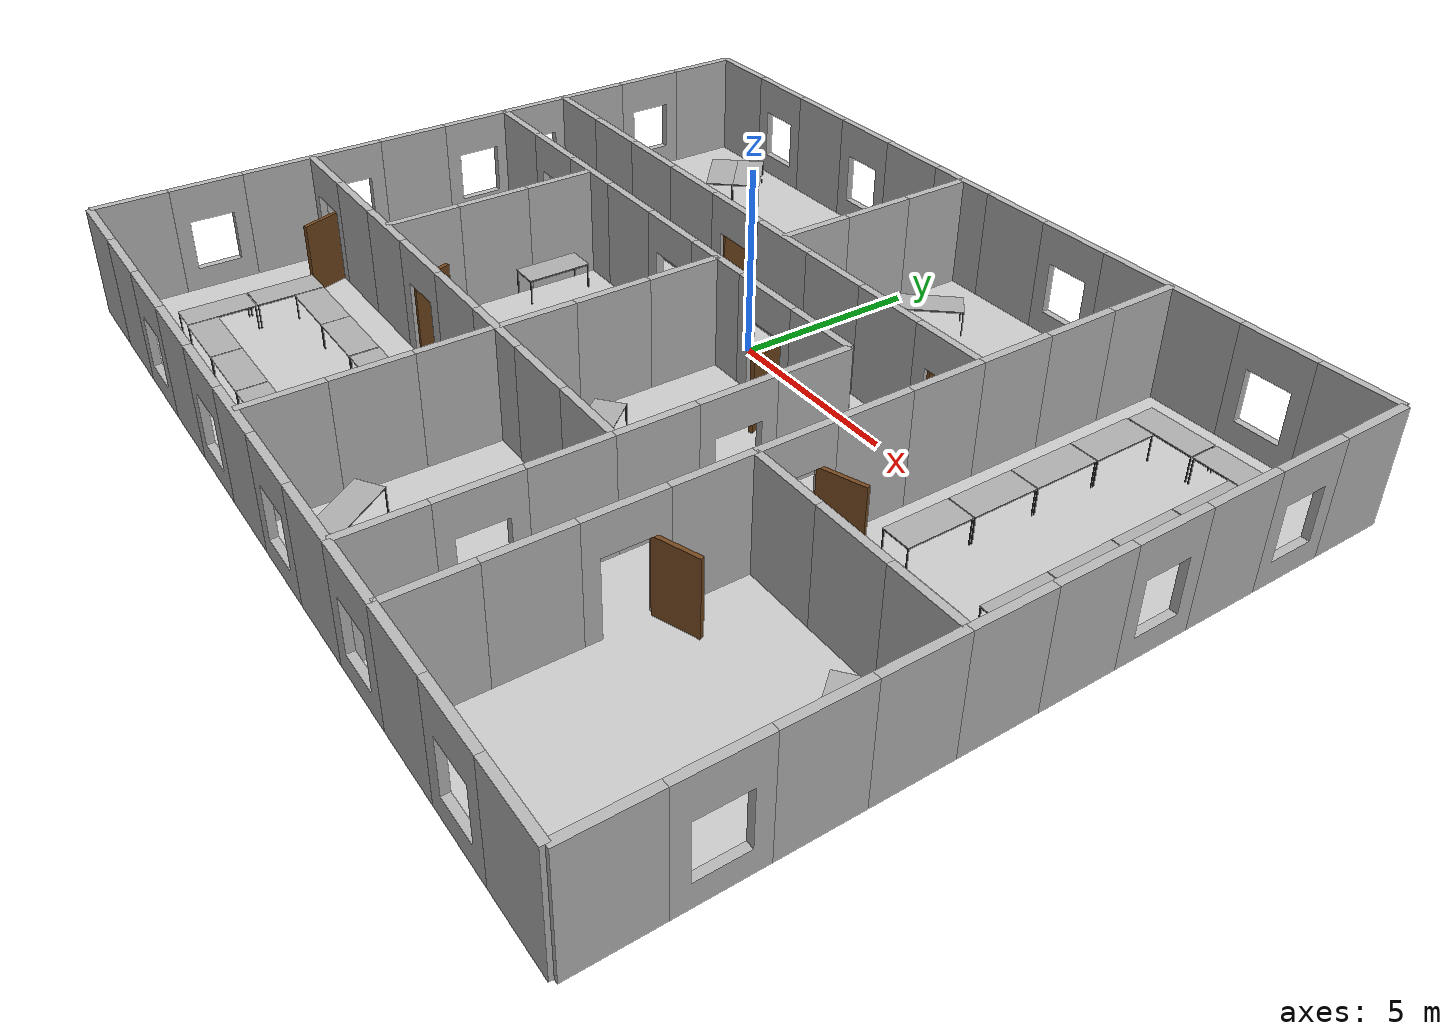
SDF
<sdf version="1.5">
 <world name="office_sim">
  <scene><shadows>false</shadows><sky><clouds>false</clouds><time>12.0</time></sky></scene>
  <include><uri>model://sun</uri></include>
  <model name="office_floor">
   <pose>1 -3 0 0 0 0</pose>
   <static>1</static>
   <link name="link">
    <collision name="collision">
     <geometry><plane><normal>0 0 1</normal><size>100 100</size></plane></geometry>
     <surface><friction><ode><mu>100</mu><mu2>50</mu2></ode></friction></surface>
    </collision>
    <visual name="visual">
     <cast_shadows>0</cast_shadows>
     <geometry><plane><normal>0 0 1</normal><size>24 20</size></plane></geometry>
     <material>
      <script><uri>file://Media/materials/scripts/iai-office.material</uri><name>IAI/OfficeCarpet</name></script>
     </material>
    </visual>
   </link>
  </model>
  <light name="fill_light_2" type="directional">
   <pose>10 20 10 -1 -1 0</pose>
   <diffuse>0.2 0.18 0.18 1</diffuse>
   <specular>0.0980392 0.0980392 0.0980392 1</specular>
   <direction>0.1 0.1 -0.9</direction>
   <attenuation>
    <range>20</range>
    <constant>0.5</constant>
    <linear>0.01</linear>
    <quadratic>0.001</quadratic>
   </attenuation>
  </light>
  <light name="fill_light_0" type="directional">
   <pose>-10 -20 10 1 1 0</pose>
   <diffuse>0.25 0.2 0.2 1</diffuse>
   <specular>0.0980392 0.0980392 0.0980392 1</specular>
   <direction>0.1 0.1 -0.9</direction>
   <attenuation>
    <range>20</range>
    <constant>0.5</constant>
    <linear>0.01</linear>
    <quadratic>0.001</quadratic>
   </attenuation>
  </light>
  <include>
   <name>DoorOpen.011</name>
   <uri>model://DoorOpen</uri>
   <pose>-2.0 1.0 0.0 0.0 -0.0 -2.384185791015625e-07</pose>
  </include>
  <include>
   <name>DoorOpen.010</name>
   <uri>model://DoorOpen</uri>
   <pose>6.0 1.0 0.0 0.0 -0.0 -2.384185791015625e-07</pose>
  </include>
  <include>
   <name>DoorOpen.009</name>
   <uri>model://DoorOpen</uri>
   <pose>-2.0 -1.0 0.0 0.0 -0.0 3.141592502593994</pose>
  </include>
  <include>
   <name>DoorOpen.008</name>
   <uri>model://DoorOpen</uri>
   <pose>-10.0 -7.0 0.0 0.0 -0.0 3.141592502593994</pose>
  </include>
  <include>
   <name>DoorOpen.007</name>
   <uri>model://DoorOpen</uri>
   <pose>-8.0 -1.0 0.0 0.0 -0.0 3.141592502593994</pose>
  </include>
  <include>
   <name>DoorOpen.006</name>
   <uri>model://DoorOpen</uri>
   <pose>2.0 -1.0 0.0 0.0 -0.0 3.141592502593994</pose>
  </include>
  <include>
   <name>DoorOpen.005</name>
   <uri>model://DoorOpen</uri>
   <pose>5.0 -10.0 0.0 0.0 -0.0 1.570796251296997</pose>
  </include>
  <include>
   <name>DoorOpen.004</name>
   <uri>model://DoorOpen</uri>
   <pose>5.0 -4.0 0.0 0.0 -0.0 1.570796251296997</pose>
  </include>
  <include>
   <name>DoorOpen.003</name>
   <uri>model://DoorOpen</uri>
   <pose>7.0 -4.0 0.0 0.0 -0.0 -1.5707963705062866</pose>
  </include>
  <include>
   <name>DoorOpen.002</name>
   <uri>model://DoorOpen</uri>
   <pose>7.0 -8.0 0.0 0.0 -0.0 -1.5707963705062866</pose>
  </include>
  <include><name>DoorOpen.001</name><uri>model://DoorOpen</uri><pose>-4.0 -7.0 0.0 0.0 -0.0 0.0</pose></include>
  <include>
   <name>BigTable.035</name>
   <uri>model://BigTable</uri>
   <pose>9.970643997192383 -3.337587833404541 0.0 0.0 -0.0 -3.141592502593994</pose>
  </include>
  <include>
   <name>BigTable.034</name>
   <uri>model://BigTable</uri>
   <pose>-1.7653074264526367 -10.015997886657715 0.0 0.0 0.0 -1.570796251296997</pose>
  </include>
  <include>
   <name>BigTable.033</name>
   <uri>model://BigTable</uri>
   <pose>1.3909807205200195 -11.392568588256836 0.0 0.0 -0.0 -0.9696148037910461</pose>
  </include>
  <include>
   <name>BigTable.032</name>
   <uri>model://BigTable</uri>
   <pose>11.59203815460205 -6.392568588256836 0.0 0.0 0.0 2.259244441986084</pose>
  </include>
  <include>
   <name>BigTable.031</name>
   <uri>model://BigTable</uri>
   <pose>1.5920383930206299 4.607431411743164 0.0 0.0 -0.0 -2.278611898422241</pose>
  </include>
  <include>
   <name>BigTable.030</name>
   <uri>model://BigTable</uri>
   <pose>-5.888200283050537 3.0161097049713135 0.0 0.0 -0.0 0.28127923607826233</pose>
  </include>
  <include>
   <name>BigTable.029</name>
   <uri>model://BigTable</uri>
   <pose>-5.666131496429443 2.247548818588257 0.0 0.0 -0.0 0.28127923607826233</pose>
  </include>
  <include>
   <name>BigTable.028</name>
   <uri>model://BigTable</uri>
   <pose>-8.040440559387207 4.811714172363281 0.0 0.0 0.0 -0.7120052576065063</pose>
  </include>
  <include>
   <name>BigTable.027</name>
   <uri>model://BigTable</uri>
   <pose>-7.517758369445801 5.417357444763184 0.0 0.0 0.0 -0.7120052576065063</pose>
  </include>
  <include>
   <name>BigTable.026</name>
   <uri>model://BigTable</uri>
   <pose>-1.4606881141662598 3.8930177688598633 0.0 0.0 -0.0 -2.475163459777832</pose>
  </include>
  <include>
   <name>BigTable.025</name>
   <uri>model://BigTable</uri>
   <pose>-1.9552350044250488 4.521844863891602 0.0 0.0 -0.0 -2.475163459777832</pose>
  </include>
  <include>
   <name>BigTable.024</name>
   <uri>model://BigTable</uri>
   <pose>-9.847131729125977 2.143615245819092 0.0 0.0 -0.0 -0.5935592651367188</pose>
  </include>
  <include>
   <name>BigTable.023</name>
   <uri>model://BigTable</uri>
   <pose>-6.975014686584473 -5.92275333404541 0.0 0.0 -0.0 0.9772372841835022</pose>
  </include>
  <include>
   <name>BigTable.022</name>
   <uri>model://BigTable</uri>
   <pose>-5.118752956390381 -8.626441955566406 0.0 0.0 -0.0 0.0</pose>
  </include>
  <include>
   <name>BigTable.021</name>
   <uri>model://BigTable</uri>
   <pose>-3.282266616821289 -8.626441955566406 0.0 0.0 -0.0 0.0</pose>
  </include>
  <include>
   <name>BigTable.020</name>
   <uri>model://BigTable</uri>
   <pose>-6.928031921386719 -8.626441955566406 0.0 0.0 -0.0 0.0</pose>
  </include>
  <include>
   <name>BigTable.019</name>
   <uri>model://BigTable</uri>
   <pose>-5.103433609008789 -11.471855163574219 0.0 0.0 -0.0 0.0</pose>
  </include>
  <include>
   <name>BigTable.018</name>
   <uri>model://BigTable</uri>
   <pose>-6.928031921386719 -11.471855163574219 0.0 0.0 -0.0 0.0</pose>
  </include>
  <include>
   <name>BigTable.017</name>
   <uri>model://BigTable</uri>
   <pose>-3.282266616821289 -11.471855163574219 0.0 0.0 -0.0 0.0</pose>
  </include>
  <include>
   <name>BigTable.016</name>
   <uri>model://BigTable</uri>
   <pose>-8.26133918762207 -10.950126647949219 0.0 0.0 0.0 -1.570796251296997</pose>
  </include>
  <include>
   <name>BigTable.015</name>
   <uri>model://BigTable</uri>
   <pose>-8.26133918762207 -9.114413261413574 0.0 0.0 0.0 -1.570796251296997</pose>
  </include>
  <include>
   <name>BigTable.014</name>
   <uri>model://BigTable</uri>
   <pose>10.849480628967285 5.211101531982422 0.0 0.0 -0.0 -3.141592502593994</pose>
  </include>
  <include>
   <name>BigTable.013</name>
   <uri>model://BigTable</uri>
   <pose>9.01376724243164 5.211101531982422 0.0 0.0 -0.0 -3.141592502593994</pose>
  </include>
  <include>
   <name>BigTable.012</name>
   <uri>model://BigTable</uri>
   <pose>8.49203872680664 -1.5925686359405518 0.0 0.0 -0.0 -1.570796251296997</pose>
  </include>
  <include>
   <name>BigTable.011</name>
   <uri>model://BigTable</uri>
   <pose>8.49203872680664 0.2320290505886078 0.0 0.0 -0.0 -1.570796251296997</pose>
  </include>
  <include>
   <name>BigTable.010</name>
   <uri>model://BigTable</uri>
   <pose>8.49203872680664 3.877794027328491 0.0 0.0 -0.0 -1.570796251296997</pose>
  </include>
  <include>
   <name>BigTable.009</name>
   <uri>model://BigTable</uri>
   <pose>8.49203872680664 2.053196430206299 0.0 0.0 -0.0 -1.570796251296997</pose>
  </include>
  <include>
   <name>BigTable.008</name>
   <uri>model://BigTable</uri>
   <pose>11.337451934814453 2.053196430206299 0.0 0.0 -0.0 -1.570796251296997</pose>
  </include>
  <include>
   <name>BigTable.007</name>
   <uri>model://BigTable</uri>
   <pose>11.337451934814453 3.877794027328491 0.0 0.0 -0.0 -1.570796251296997</pose>
  </include>
  <include>
   <name>BigTable.006</name>
   <uri>model://BigTable</uri>
   <pose>11.337451934814453 0.2320290505886078 0.0 0.0 -0.0 -1.570796251296997</pose>
  </include>
  <include>
   <name>BigTable.005</name>
   <uri>model://BigTable</uri>
   <pose>11.337451934814453 -1.5925686359405518 0.0 0.0 -0.0 -1.570796251296997</pose>
  </include>
  <include>
   <name>BigTable.004</name>
   <uri>model://BigTable</uri>
   <pose>-5.507961273193359 -2.5925686359405518 0.0 0.0 -0.0 -1.570796251296997</pose>
  </include>
  <include>
   <name>BigTable.003</name>
   <uri>model://BigTable</uri>
   <pose>-2.0734405517578125 -4.955126762390137 0.0 0.0 -0.0 -1.1522915363311768</pose>
  </include>
  <include>
   <name>BigTable.002</name>
   <uri>model://BigTable</uri>
   <pose>-1.3424824476242065 -4.630010604858398 0.0 0.0 -0.0 -1.1522915363311768</pose>
  </include>
  <include>
   <name>BigTable.001</name>
   <uri>model://BigTable</uri>
   <pose>1.5920383930206299 -5.392568588256836 0.0 0.0 -0.0 -0.8726645708084106</pose>
  </include>
  <include>
   <name>WindowTile.019</name>
   <uri>model://WindowTile</uri>
   <pose>-6.0 -13.0 0.0 0.0 -0.0 0.0</pose>
  </include>
  <include>
   <name>WindowTile.018</name>
   <uri>model://WindowTile</uri>
   <pose>-2.0 -13.0 0.0 0.0 -0.0 0.0</pose>
  </include>
  <include>
   <name>WindowTile.017</name>
   <uri>model://WindowTile</uri>
   <pose>2.0 -13.0 0.0 0.0 -0.0 0.0</pose>
  </include>
  <include>
   <name>WindowTile.016</name>
   <uri>model://WindowTile</uri>
   <pose>6.0 -13.0 0.0 0.0 -0.0 0.0</pose>
  </include>
  <include>
   <name>WindowTile.015</name>
   <uri>model://WindowTile</uri>
   <pose>-11.0 -10.0 0.0 0.0 -0.0 -1.570796251296997</pose>
  </include>
  <include>
   <name>WindowTile.014</name>
   <uri>model://WindowTile</uri>
   <pose>-11.0 -6.0 0.0 0.0 -0.0 -1.570796251296997</pose>
  </include>
  <include>
   <name>WindowTile.013</name>
   <uri>model://WindowTile</uri>
   <pose>-11.0 -2.0 0.0 0.0 -0.0 -1.570796251296997</pose>
  </include>
  <include>
   <name>WindowTile.012</name>
   <uri>model://WindowTile</uri>
   <pose>-11.0 0.0 0.0 0.0 -0.0 -1.570796251296997</pose>
  </include>
  <include>
   <name>WindowTile.003</name>
   <uri>model://WindowTile</uri>
   <pose>-11.0 4.0 0.0 0.0 -0.0 -1.570796251296997</pose>
  </include>
  <include>
   <name>WallTile.084</name>
   <uri>model://WallTile</uri>
   <pose>2.0 1.0 0.0 0.0 -0.0 3.141592502593994</pose>
  </include>
  <include>
   <name>DoorTile.011</name>
   <uri>model://DoorTile</uri>
   <pose>5.0 -4.0 0.0 0.0 -0.0 -1.570796251296997</pose>
  </include>
  <include>
   <name>DoorTile.010</name>
   <uri>model://DoorTile</uri>
   <pose>5.0 -10.0 0.0 0.0 -0.0 -1.570796251296997</pose>
  </include>
  <include><name>WallTile.082</name><uri>model://WallTile</uri><pose>4.0 -7.0 0.0 0.0 -0.0 0.0</pose></include>
  <include>
   <name>WallTile.081</name>
   <uri>model://WallTile</uri>
   <pose>2.0 -7.0 0.0 0.0 -0.0 3.141592502593994</pose>
  </include>
  <include>
   <name>WallTile.080</name>
   <uri>model://WallTile</uri>
   <pose>5.0 -6.0 0.0 0.0 -0.0 1.570796251296997</pose>
  </include>
  <include>
   <name>WallTile.078</name>
   <uri>model://WallTile</uri>
   <pose>5.0 -2.0 0.0 0.0 -0.0 1.570796251296997</pose>
  </include>
  <include>
   <name>WallTile.077</name>
   <uri>model://WallTile</uri>
   <pose>5.0 -8.0 0.0 0.0 -0.0 1.570796251296997</pose>
  </include>
  <include>
   <name>WallTile.075</name>
   <uri>model://WallTile</uri>
   <pose>5.0 -12.0 0.0 0.0 -0.0 1.570796251296997</pose>
  </include>
  <include>
   <name>WallTile.074</name>
   <uri>model://WallTile</uri>
   <pose>0.0 -12.0 0.0 0.0 -0.0 1.570796251296997</pose>
  </include>
  <include>
   <name>WallTile.073</name>
   <uri>model://WallTile</uri>
   <pose>0.0 -10.0 0.0 0.0 -0.0 1.570796251296997</pose>
  </include>
  <include>
   <name>WallTile.072</name>
   <uri>model://WallTile</uri>
   <pose>0.0 -8.0 0.0 0.0 -0.0 1.570796251296997</pose>
  </include>
  <include>
   <name>WallTile.071</name>
   <uri>model://WallTile</uri>
   <pose>-2.0 -7.0 0.0 0.0 -0.0 3.141592502593994</pose>
  </include>
  <include>
   <name>WallTile.070</name>
   <uri>model://WallTile</uri>
   <pose>-6.0 -7.0 0.0 0.0 -0.0 3.141592502593994</pose>
  </include>
  <include>
   <name>WallTile.069</name>
   <uri>model://WallTile</uri>
   <pose>-8.0 -7.0 0.0 0.0 -0.0 3.141592502593994</pose>
  </include>
  <include><name>WallTile.068</name><uri>model://WallTile</uri><pose>0.0 -7.0 0.0 0.0 -0.0 0.0</pose></include>
  <include><name>DoorTile.009</name><uri>model://DoorTile</uri><pose>-4.0 -7.0 0.0 0.0 -0.0 0.0</pose></include>
  <include>
   <name>DoorTile.008</name>
   <uri>model://DoorTile</uri>
   <pose>-10.0 -7.0 0.0 0.0 -0.0 0.0</pose>
  </include>
  <include>
   <name>WallTile.067</name>
   <uri>model://WallTile</uri>
   <pose>0.0 -2.0 0.0 0.0 -0.0 1.570796251296997</pose>
  </include>
  <include>
   <name>WallTile.066</name>
   <uri>model://WallTile</uri>
   <pose>0.0 -4.0 0.0 0.0 -0.0 1.570796251296997</pose>
  </include>
  <include>
   <name>WallTile.065</name>
   <uri>model://WallTile</uri>
   <pose>0.0 -6.0 0.0 0.0 -0.0 1.570796251296997</pose>
  </include>
  <include>
   <name>WallTile.064</name>
   <uri>model://WallTile</uri>
   <pose>-6.0 -6.0 0.0 0.0 -0.0 1.570796251296997</pose>
  </include>
  <include>
   <name>WallTile.063</name>
   <uri>model://WallTile</uri>
   <pose>-6.0 -4.0 0.0 0.0 -0.0 1.570796251296997</pose>
  </include>
  <include>
   <name>WallTile.021</name>
   <uri>model://WallTile</uri>
   <pose>-6.0 -2.0 0.0 0.0 -0.0 1.570796251296997</pose>
  </include>
  <include><name>DoorTile.007</name><uri>model://DoorTile</uri><pose>-8.0 -1.0 0.0 0.0 -0.0 0.0</pose></include>
  <include><name>DoorTile.006</name><uri>model://DoorTile</uri><pose>-2.0 -1.0 0.0 0.0 -0.0 0.0</pose></include>
  <include><name>WallTile.062</name><uri>model://WallTile</uri><pose>0.0 -1.0 0.0 0.0 -0.0 0.0</pose></include>
  <include>
   <name>WallTile.061</name>
   <uri>model://WallTile</uri>
   <pose>4.0 -1.0 0.0 0.0 -0.0 3.141592502593994</pose>
  </include>
  <include><name>DoorTile.005</name><uri>model://DoorTile</uri><pose>2.0 -1.0 0.0 0.0 -0.0 0.0</pose></include>
  <include>
   <name>WallTile.036</name>
   <uri>model://WallTile</uri>
   <pose>-10.0 -1.0 0.0 0.0 -0.0 3.141592502593994</pose>
  </include>
  <include>
   <name>WallTile.031</name>
   <uri>model://WallTile</uri>
   <pose>-6.0 -1.0 0.0 0.0 -0.0 3.141592502593994</pose>
  </include>
  <include>
   <name>WallTile.028</name>
   <uri>model://WallTile</uri>
   <pose>-4.0 -1.0 0.0 0.0 -0.0 3.141592502593994</pose>
  </include>
  <include>
   <name>DoorTile.004</name>
   <uri>model://DoorTile</uri>
   <pose>7.0 -8.0 0.0 0.0 -0.0 -1.570796251296997</pose>
  </include>
  <include>
   <name>WindowTile.010</name>
   <uri>model://WindowTile</uri>
   <pose>10.0 -13.0 0.0 0.0 -0.0 0.0</pose>
  </include>
  <include>
   <name>WindowTile.009</name>
   <uri>model://WindowTile</uri>
   <pose>13.0 -10.0 0.0 0.0 -0.0 -1.570796251296997</pose>
  </include>
  <include>
   <name>WallTile.060</name>
   <uri>model://WallTile</uri>
   <pose>-8.0 1.0 0.0 0.0 -0.0 3.141592502593994</pose>
  </include>
  <include>
   <name>WallTile.059</name>
   <uri>model://WallTile</uri>
   <pose>-4.0 1.0 0.0 0.0 -0.0 3.141592502593994</pose>
  </include>
  <include>
   <name>WallTile.058</name>
   <uri>model://WallTile</uri>
   <pose>-6.0 1.0 0.0 0.0 -0.0 3.141592502593994</pose>
  </include>
  <include>
   <name>WallTile.057</name>
   <uri>model://WallTile</uri>
   <pose>-10.0 1.0 0.0 0.0 -0.0 3.141592502593994</pose>
  </include>
  <include>
   <name>WallTile.056</name>
   <uri>model://WallTile</uri>
   <pose>-10.0 7.0 0.0 0.0 -0.0 3.141592502593994</pose>
  </include>
  <include>
   <name>WindowTile.008</name>
   <uri>model://WindowTile</uri>
   <pose>-8.0 7.0 0.0 0.0 -0.0 0.0</pose>
  </include>
  <include>
   <name>WallTile.055</name>
   <uri>model://WallTile</uri>
   <pose>-11.0 6.0 0.0 0.0 -0.0 1.570796251296997</pose>
  </include>
  <include>
   <name>WallTile.054</name>
   <uri>model://WallTile</uri>
   <pose>-11.0 2.0 0.0 0.0 -0.0 1.570796251296997</pose>
  </include>
  <include>
   <name>WallTile.051</name>
   <uri>model://WallTile</uri>
   <pose>-11.0 -4.0 0.0 0.0 -0.0 1.570796251296997</pose>
  </include>
  <include>
   <name>WallTile.047</name>
   <uri>model://WallTile</uri>
   <pose>-11.0 -8.0 0.0 0.0 -0.0 -1.5707963705062866</pose>
  </include>
  <include>
   <name>WallTile.046</name>
   <uri>model://WallTile</uri>
   <pose>-11.0 -12.0 0.0 0.0 -0.0 -1.5707963705062866</pose>
  </include>
  <include>
   <name>WallTile.044</name>
   <uri>model://WallTile</uri>
   <pose>0.0 -13.0 0.0 0.0 -0.0 3.141592502593994</pose>
  </include>
  <include>
   <name>WallTile.043</name>
   <uri>model://WallTile</uri>
   <pose>-4.0 -13.0 0.0 0.0 -0.0 3.141592502593994</pose>
  </include>
  <include>
   <name>WallTile.042</name>
   <uri>model://WallTile</uri>
   <pose>-10.0 -13.0 0.0 0.0 -0.0 3.141592502593994</pose>
  </include>
  <include>
   <name>WallTile.040</name>
   <uri>model://WallTile</uri>
   <pose>-8.0 -13.0 0.0 0.0 -0.0 3.141592502593994</pose>
  </include>
  <include>
   <name>WallTile.039</name>
   <uri>model://WallTile</uri>
   <pose>4.0 -13.0 0.0 0.0 -0.0 3.141592502593994</pose>
  </include>
  <include>
   <name>WallTile.037</name>
   <uri>model://WallTile</uri>
   <pose>7.0 -12.0 0.0 0.0 -0.0 -1.5707963705062866</pose>
  </include>
  <include>
   <name>WallTile.035</name>
   <uri>model://WallTile</uri>
   <pose>7.0 -6.0 0.0 0.0 -0.0 -1.5707963705062866</pose>
  </include>
  <include>
   <name>WallTile.034</name>
   <uri>model://WallTile</uri>
   <pose>7.0 -10.0 0.0 0.0 -0.0 -1.5707963705062866</pose>
  </include>
  <include>
   <name>WallTile.033</name>
   <uri>model://WallTile</uri>
   <pose>8.0 -13.0 0.0 0.0 -0.0 3.141592502593994</pose>
  </include>
  <include>
   <name>WallTile.032</name>
   <uri>model://WallTile</uri>
   <pose>12.0 -13.0 0.0 0.0 -0.0 3.141592502593994</pose>
  </include>
  <include>
   <name>WallTile.030</name>
   <uri>model://WallTile</uri>
   <pose>13.0 -12.0 0.0 0.0 -0.0 1.570796251296997</pose>
  </include>
  <include>
   <name>WallTile.027</name>
   <uri>model://WallTile</uri>
   <pose>13.0 -4.0 0.0 0.0 -0.0 1.570796251296997</pose>
  </include>
  <include>
   <name>WallTile.026</name>
   <uri>model://WallTile</uri>
   <pose>13.0 -8.0 0.0 0.0 -0.0 1.570796251296997</pose>
  </include>
  <include>
   <name>WallTile.025</name>
   <uri>model://WallTile</uri>
   <pose>13.0 -6.0 0.0 0.0 -0.0 1.570796251296997</pose>
  </include>
  <include>
   <name>WallTile.024</name>
   <uri>model://WallTile</uri>
   <pose>10.0 -5.0 0.0 0.0 -0.0 3.141592502593994</pose>
  </include>
  <include>
   <name>WallTile.023</name>
   <uri>model://WallTile</uri>
   <pose>12.0 -5.0 0.0 0.0 -0.0 3.141592502593994</pose>
  </include>
  <include>
   <name>WallTile.022</name>
   <uri>model://WallTile</uri>
   <pose>8.0 -5.0 0.0 0.0 -0.0 3.141592502593994</pose>
  </include>
  <include>
   <name>WallTile.020</name>
   <uri>model://WallTile</uri>
   <pose>7.0 0.0 0.0 0.0 -0.0 1.570796251296997</pose>
  </include>
  <include>
   <name>WallTile.019</name>
   <uri>model://WallTile</uri>
   <pose>7.0 -2.0 0.0 0.0 -0.0 1.570796251296997</pose>
  </include>
  <include>
   <name>WallTile.018</name>
   <uri>model://WallTile</uri>
   <pose>13.0 -2.0 0.0 0.0 -0.0 1.570796251296997</pose>
  </include>
  <include>
   <name>WindowTile.007</name>
   <uri>model://WindowTile</uri>
   <pose>13.0 0.0 0.0 0.0 -0.0 -1.570796251296997</pose>
  </include>
  <include>
   <name>WindowTile.006</name>
   <uri>model://WindowTile</uri>
   <pose>13.0 4.0 0.0 0.0 -0.0 -1.570796251296997</pose>
  </include>
  <include>
   <name>WallTile.017</name>
   <uri>model://WallTile</uri>
   <pose>13.0 6.0 0.0 0.0 -0.0 1.570796251296997</pose>
  </include>
  <include>
   <name>WallTile.016</name>
   <uri>model://WallTile</uri>
   <pose>13.0 2.0 0.0 0.0 -0.0 1.570796251296997</pose>
  </include>
  <include>
   <name>WallTile.015</name>
   <uri>model://WallTile</uri>
   <pose>12.0 7.0 0.0 0.0 -0.0 3.141592502593994</pose>
  </include>
  <include>
   <name>WallTile.014</name>
   <uri>model://WallTile</uri>
   <pose>8.0 7.0 0.0 0.0 -0.0 3.141592502593994</pose>
  </include>
  <include>
   <name>WindowTile.005</name>
   <uri>model://WindowTile</uri>
   <pose>10.0 7.0 0.0 0.0 -0.0 0.0</pose>
  </include>
  <include>
   <name>WallTile.013</name>
   <uri>model://WallTile</uri>
   <pose>7.0 4.0 0.0 0.0 -0.0 1.570796251296997</pose>
  </include>
  <include>
   <name>WallTile.012</name>
   <uri>model://WallTile</uri>
   <pose>-2.0 7.0 0.0 0.0 -0.0 3.141592502593994</pose>
  </include>
  <include>
   <name>WallTile.011</name>
   <uri>model://WallTile</uri>
   <pose>7.0 2.0 0.0 0.0 -0.0 1.570796251296997</pose>
  </include>
  <include>
   <name>WallTile.010</name>
   <uri>model://WallTile</uri>
   <pose>7.0 6.0 0.0 0.0 -0.0 1.570796251296997</pose>
  </include>
  <include>
   <name>WindowTile.004</name>
   <uri>model://WindowTile</uri>
   <pose>4.0 7.0 0.0 0.0 -0.0 0.0</pose>
  </include>
  <include>
   <name>WallTile.009</name>
   <uri>model://WallTile</uri>
   <pose>2.0 7.0 0.0 0.0 -0.0 3.141592502593994</pose>
  </include>
  <include>
   <name>WallTile.008</name>
   <uri>model://WallTile</uri>
   <pose>6.0 7.0 0.0 0.0 -0.0 3.141592502593994</pose>
  </include>
  <include>
   <name>DoorTile.003</name>
   <uri>model://DoorTile</uri>
   <pose>7.0 -4.0 0.0 0.0 -0.0 -1.570796251296997</pose>
  </include>
  <include><name>DoorTile.002</name><uri>model://DoorTile</uri><pose>-2.0 1.0 0.0 0.0 -0.0 0.0</pose></include>
  <include>
   <name>WallTile.006</name>
   <uri>model://WallTile</uri>
   <pose>4.0 1.0 0.0 0.0 -0.0 3.141592502593994</pose>
  </include>
  <include>
   <name>WallTile.007</name>
   <uri>model://WallTile</uri>
   <pose>0.0 7.0 0.0 0.0 -0.0 3.141592502593994</pose>
  </include>
  <include>
   <name>WallTile.005</name>
   <uri>model://WallTile</uri>
   <pose>-6.0 7.0 0.0 0.0 -0.0 3.141592502593994</pose>
  </include>
  <include>
   <name>WallTile.004</name>
   <uri>model://WallTile</uri>
   <pose>0.0 6.0 0.0 0.0 -0.0 1.570796251296997</pose>
  </include>
  <include>
   <name>WallTile.003</name>
   <uri>model://WallTile</uri>
   <pose>0.0 4.0 0.0 0.0 -0.0 1.570796251296997</pose>
  </include>
  <include>
   <name>WallTile.002</name>
   <uri>model://WallTile</uri>
   <pose>0.0 2.0 0.0 0.0 -0.0 1.570796251296997</pose>
  </include>
  <include><name>DoorTile.001</name><uri>model://DoorTile</uri><pose>6.0 1.0 0.0 0.0 -0.0 0.0</pose></include>
  <include>
   <name>WindowTile.002</name>
   <uri>model://WindowTile</uri>
   <pose>-4.0 7.0 0.0 0.0 -0.0 0.0</pose>
  </include>
  <include><name>WallTile.001</name><uri>model://WallTile</uri><pose>0.0 1.0 0.0 0.0 -0.0 0.0</pose></include>
 </world>
</sdf>

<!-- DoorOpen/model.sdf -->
<sdf version="1.5">
  <model name="DoorOpen">
    <static>true</static>
    <link name="DoorOpen">
      <collision name="collision">
	<geometry>
            <mesh>
	      <uri>model://DoorOpen/DoorOpen.dae</uri>
	    </mesh>
          </geometry>
      </collision>
      <visual name="vis">
        <cast_shadows>false</cast_shadows>
	<geometry>
            <mesh>
	      <uri>model://DoorOpen/DoorOpen.dae</uri>
	    </mesh>
          </geometry>
      </visual>
    </link>
  </model>
</sdf>

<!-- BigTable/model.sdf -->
<sdf version="1.5">
  <model name="BigTable">
    <static>true</static>
    <link name="BigTable">
      <collision name="collision">
	<geometry>
            <mesh>
	      <uri>model://BigTable/BigTable.dae</uri>
	    </mesh>
          </geometry>
      </collision>
      <visual name="vis">
        <cast_shadows>false</cast_shadows>
	<geometry>
            <mesh>
	      <uri>model://BigTable/BigTable.dae</uri>
	    </mesh>
          </geometry>
      </visual>
    </link>
  </model>
</sdf>

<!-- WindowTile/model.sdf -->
<sdf version="1.5">
  <model name="WindowTile">
    <static>true</static>
    <link name="WindowTile">
      <collision name="collision">
	<geometry>
            <mesh>
	      <uri>model://WindowTile/WindowTile.dae</uri>
	    </mesh>
          </geometry>
      </collision>
      <visual name="vis">
        <cast_shadows>false</cast_shadows>
	<geometry>
            <mesh>
	      <uri>model://WindowTile/WindowTile.dae</uri>
	    </mesh>
          </geometry>
          <material>
	  <script>
            <uri>file://Media/materials/scripts/iai-office.material</uri>
             <name>IAI/OfficeWall</name>
          </script>
        </material>
      </visual>
    </link>
  </model>
</sdf>

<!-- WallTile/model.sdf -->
<sdf version="1.5">
  <model name="WallTile">
    <static>true</static>
    <link name="WallTile">
      <collision name="collision">
	<geometry>
            <mesh>
	      <uri>model://WallTile/WallTile.dae</uri>
	    </mesh>
          </geometry>
      </collision>
      <visual name="vis">
        <cast_shadows>false</cast_shadows>
	<geometry>
            <mesh>
	      <uri>model://WallTile/WallTile.dae</uri>
	    </mesh>
          </geometry>
          <material>
	  <script>
            <uri>file://Media/materials/scripts/iai-office.material</uri>
             <name>IAI/OfficeWall</name>
          </script>
        </material>
      </visual>
    </link>
  </model>
</sdf>

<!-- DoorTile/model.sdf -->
<sdf version="1.5">
  <model name="DoorTile">
    <static>true</static>
    <link name="DoorTile">
      <collision name="collision">
	<geometry>
            <mesh>
	      <uri>model://DoorTile/DoorTile.dae</uri>
	    </mesh>
          </geometry>
      </collision>
      <visual name="vis">
        <cast_shadows>false</cast_shadows>
	<geometry>
            <mesh>
	      <uri>model://DoorTile/DoorTile.dae</uri>
	    </mesh>
          </geometry>
          <material>
	  <script>
            <uri>file://Media/materials/scripts/iai-office.material</uri>
             <name>IAI/OfficeWall</name>
          </script>
        </material>
      </visual>
    </link>
  </model>
</sdf>
